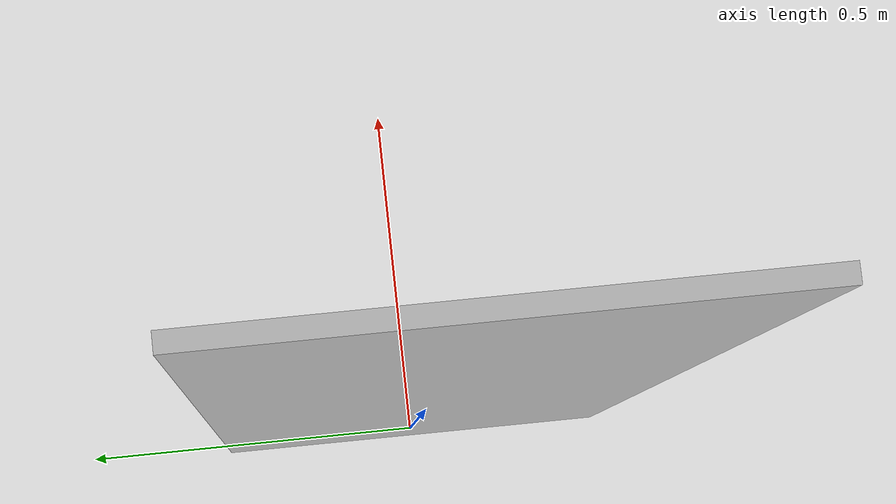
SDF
<?xml version="1.0"?>
<sdf version="1.5">
  <model name="human_1">
    <static>true</static>
    <link name="human_1">
      <!-- Pose of the link relative to the model:
           x y z roll pitch yaw -->
      <pose>0 0 0.915 0 0 0</pose>

      <!-- Collision is REQUIRED if you want front_rangefinder / lidar / ray sensors
           to measure the target distance. -->
      <collision name="human_1_collision">
        <geometry>
          <box>
            <!-- thickness width height -->
            <size>0.02 0.57 1.83</size>
          </box>
        </geometry>
        <surface>
          <contact>
            <collide_without_contact>true</collide_without_contact>
          </contact>
        </surface>
      </collision>

      <!-- Visual textured face -->
      <visual name="human_1_visual">
        <cast_shadows>false</cast_shadows>
        <geometry>
          <box>
            <size>0.02 0.57 1.83</size>
          </box>
        </geometry>
        <material>
          <script>
            <uri>model://Human1/materials/scripts</uri>
            <uri>model://Human1/materials/textures</uri>
            <name>human_1</name>
          </script>
        </material>
      </visual>
    </link>
    <plugin name="human_controller" filename="libgazebo_ros_planar_move.so">
      <robotNamespace>Human</robotNamespace>
      <commandTopic>cmd_vel</commandTopic>
      <robotBaseFrame>link</robotBaseFrame>
    </plugin>
  </model>
</sdf>
